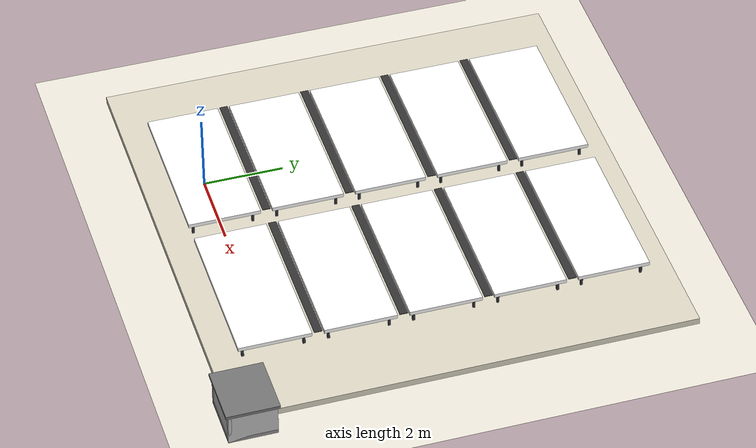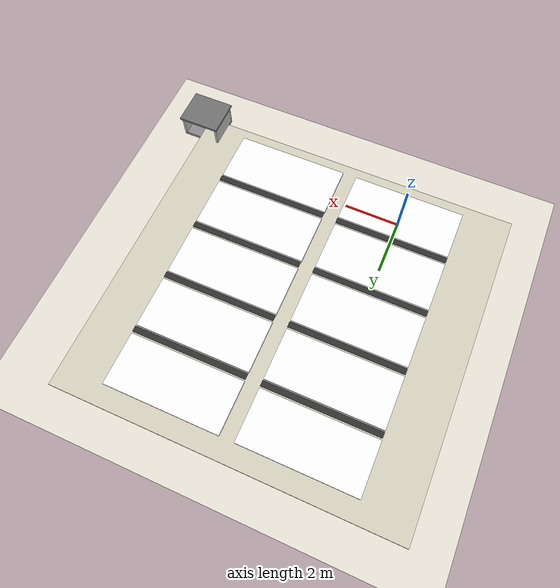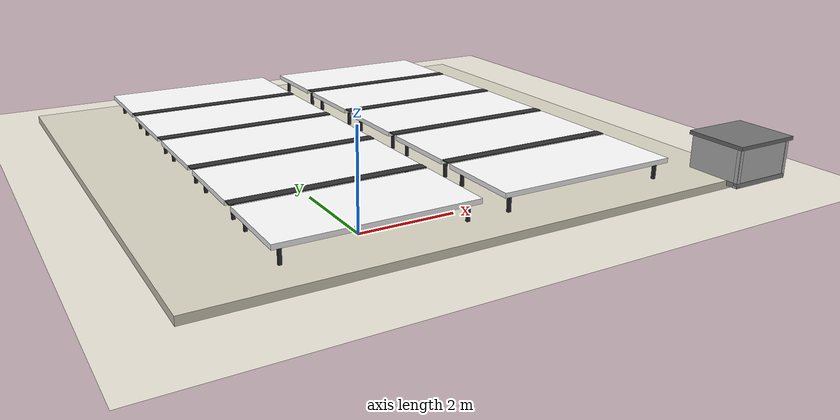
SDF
<?xml version="1.0" ?>
<sdf version="1.9">
  <world name="solar_panel_world">

    <plugin filename="gz-sim-physics-system" name="gz::sim::systems::Physics"/>
    <plugin filename="gz-sim-user-commands-system" name="gz::sim::systems::UserCommands"/>
    <plugin filename="gz-sim-scene-broadcaster-system" name="gz::sim::systems::SceneBroadcaster"/>

    <plugin filename="gz-sim-sensors-system" name="gz::sim::systems::Sensors">
      <render_engine>ogre2</render_engine>
    </plugin>

    <plugin filename="gz-sim-imu-system" name="gz::sim::systems::Imu"/>

    <gravity>0 0 -9.8</gravity>

    <light name="sun" type="directional">
      <cast_shadows>true</cast_shadows>
      <pose>0 0 10 0 0 0</pose>
      <diffuse>0.8 0.8 0.8 1</diffuse>
      <specular>0.2 0.2 0.2 1</specular>
      <direction>-0.5 0.1 -0.9</direction>
    </light>

    <model name="ground_plane">
      <static>true</static>
      <link name="link">
        <collision name="collision">
          <geometry>
            <plane>
              <normal>0 0 1</normal>
              <size>60 60</size>
            </plane>
          </geometry>
        </collision>
        <visual name="visual">
          <geometry>
            <plane>
              <normal>0 0 1</normal>
              <size>60 60</size>
            </plane>
          </geometry>
          <material>
            <ambient>0.92 0.90 0.85 1</ambient>
            <diffuse>0.92 0.90 0.85 1</diffuse>
          </material>
        </visual>
      </link>
    </model>

    <model name="warehouse_roof">
      <static>true</static>
      <pose>2.25 4.2 0.05 0 0 0</pose>
      <link name="link">
        <collision name="collision">
          <geometry>
            <box>
              <size>12.0 11.5 0.20</size>
            </box>
          </geometry>
        </collision>
        <visual name="visual">
          <geometry>
            <box>
              <size>12.0 11.5 0.20</size>
            </box>
          </geometry>
          <material>
            <ambient>0.85 0.83 0.76 1</ambient>
            <diffuse>0.85 0.83 0.76 1</diffuse>
          </material>
        </visual>
      </link>
    </model>

    <!-- FIRST COLUMN: PANELS 1-5 -->

    <model name="panel_1">
      <static>true</static>
      <pose>0 0 0.55 0 0 0</pose>
      <link name="link">
        <visual name="post_fl">
          <pose>-1.8 -0.75 -0.275 0 0 0</pose>
          <geometry><box><size>0.06 0.06 0.55</size></box></geometry>
          <material><ambient>0.20 0.20 0.22 1</ambient><diffuse>0.20 0.20 0.22 1</diffuse></material>
        </visual>
        <visual name="post_fr">
          <pose>1.8 -0.75 -0.275 0 0 0</pose>
          <geometry><box><size>0.06 0.06 0.55</size></box></geometry>
          <material><ambient>0.20 0.20 0.22 1</ambient><diffuse>0.20 0.20 0.22 1</diffuse></material>
        </visual>
        <visual name="post_rl">
          <pose>-1.8 0.75 -0.275 0 0 0</pose>
          <geometry><box><size>0.06 0.06 0.55</size></box></geometry>
          <material><ambient>0.20 0.20 0.22 1</ambient><diffuse>0.20 0.20 0.22 1</diffuse></material>
        </visual>
        <visual name="post_rr">
          <pose>1.8 0.75 -0.275 0 0 0</pose>
          <geometry><box><size>0.06 0.06 0.55</size></box></geometry>
          <material><ambient>0.20 0.20 0.22 1</ambient><diffuse>0.20 0.20 0.22 1</diffuse></material>
        </visual>
        <visual name="rail_left">
          <pose>0 -0.75 -0.02 0 0 0</pose>
          <geometry><box><size>3.8 0.05 0.05</size></box></geometry>
          <material><ambient>0.20 0.20 0.22 1</ambient><diffuse>0.20 0.20 0.22 1</diffuse></material>
        </visual>
        <visual name="rail_right">
          <pose>0 0.75 -0.02 0 0 0</pose>
          <geometry><box><size>3.8 0.05 0.05</size></box></geometry>
          <material><ambient>0.20 0.20 0.22 1</ambient><diffuse>0.20 0.20 0.22 1</diffuse></material>
        </visual>
        <visual name="cross_front">
          <pose>0 -0.35 -0.02 0 0 0</pose>
          <geometry><box><size>3.8 0.04 0.04</size></box></geometry>
          <material><ambient>0.20 0.20 0.22 1</ambient><diffuse>0.20 0.20 0.22 1</diffuse></material>
        </visual>
        <visual name="cross_back">
          <pose>0 0.35 -0.02 0 0 0</pose>
          <geometry><box><size>3.8 0.04 0.04</size></box></geometry>
          <material><ambient>0.20 0.20 0.22 1</ambient><diffuse>0.20 0.20 0.22 1</diffuse></material>
        </visual>
        <visual name="brace_left">
          <pose>-0.9 0 0 0 0 0.55</pose>
          <geometry><box><size>0.04 1.65 0.04</size></box></geometry>
          <material><ambient>0.20 0.20 0.22 1</ambient><diffuse>0.20 0.20 0.22 1</diffuse></material>
        </visual>
        <visual name="brace_right">
          <pose>0.9 0 0 0 0 -0.55</pose>
          <geometry><box><size>0.04 1.65 0.04</size></box></geometry>
          <material><ambient>0.20 0.20 0.22 1</ambient><diffuse>0.20 0.20 0.22 1</diffuse></material>
        </visual>
        <collision name="collision">
          <geometry>
            <box><size>4 1.8 0.1</size></box>
          </geometry>
        </collision>
        <visual name="visual">
          <geometry>
            <box><size>4 1.8 0.1</size></box>
          </geometry>
          <material>
            <ambient>1 1 1 1</ambient>
            <diffuse>1 1 1 1</diffuse>
            <specular>0.15 0.15 0.15 1</specular>
            <pbr>
              <metal>
                <albedo_map>../materials/textures/solar_panel_01_dust.png</albedo_map>
                <roughness>0.4</roughness>
                <metalness>0.1</metalness>
              </metal>
            </pbr>
          </material>
        </visual>
      </link>
    </model>

    <model name="gap_1">
      <static>true</static>
      <pose>0 1.05 0.60 0 0 0</pose>
      <link name="link">
        <collision name="collision">
          <geometry>
            <box><size>4 0.2 0.02</size></box>
          </geometry>
        </collision>
        <visual name="visual">
          <geometry>
            <box><size>4 0.2 0.02</size></box>
          </geometry>
          <material>
            <ambient>0.2 0.2 0.2 1</ambient>
            <diffuse>0.2 0.2 0.2 1</diffuse>
          </material>
        </visual>
      </link>
    </model>

    <model name="panel_2">
      <static>true</static>
      <pose>0 2.1 0.55 0 0 0</pose>
      <link name="link">
        <visual name="post_fl">
          <pose>-1.8 -0.75 -0.275 0 0 0</pose>
          <geometry><box><size>0.06 0.06 0.55</size></box></geometry>
          <material><ambient>0.20 0.20 0.22 1</ambient><diffuse>0.20 0.20 0.22 1</diffuse></material>
        </visual>
        <visual name="post_fr">
          <pose>1.8 -0.75 -0.275 0 0 0</pose>
          <geometry><box><size>0.06 0.06 0.55</size></box></geometry>
          <material><ambient>0.20 0.20 0.22 1</ambient><diffuse>0.20 0.20 0.22 1</diffuse></material>
        </visual>
        <visual name="post_rl">
          <pose>-1.8 0.75 -0.275 0 0 0</pose>
          <geometry><box><size>0.06 0.06 0.55</size></box></geometry>
          <material><ambient>0.20 0.20 0.22 1</ambient><diffuse>0.20 0.20 0.22 1</diffuse></material>
        </visual>
        <visual name="post_rr">
          <pose>1.8 0.75 -0.275 0 0 0</pose>
          <geometry><box><size>0.06 0.06 0.55</size></box></geometry>
          <material><ambient>0.20 0.20 0.22 1</ambient><diffuse>0.20 0.20 0.22 1</diffuse></material>
        </visual>
        <visual name="rail_left">
          <pose>0 -0.75 -0.02 0 0 0</pose>
          <geometry><box><size>3.8 0.05 0.05</size></box></geometry>
          <material><ambient>0.20 0.20 0.22 1</ambient><diffuse>0.20 0.20 0.22 1</diffuse></material>
        </visual>
        <visual name="rail_right">
          <pose>0 0.75 -0.02 0 0 0</pose>
          <geometry><box><size>3.8 0.05 0.05</size></box></geometry>
          <material><ambient>0.20 0.20 0.22 1</ambient><diffuse>0.20 0.20 0.22 1</diffuse></material>
        </visual>
        <visual name="cross_front">
          <pose>0 -0.35 -0.02 0 0 0</pose>
          <geometry><box><size>3.8 0.04 0.04</size></box></geometry>
          <material><ambient>0.20 0.20 0.22 1</ambient><diffuse>0.20 0.20 0.22 1</diffuse></material>
        </visual>
        <visual name="cross_back">
          <pose>0 0.35 -0.02 0 0 0</pose>
          <geometry><box><size>3.8 0.04 0.04</size></box></geometry>
          <material><ambient>0.20 0.20 0.22 1</ambient><diffuse>0.20 0.20 0.22 1</diffuse></material>
        </visual>
        <visual name="brace_left">
          <pose>-0.9 0 0 0 0 0.55</pose>
          <geometry><box><size>0.04 1.65 0.04</size></box></geometry>
          <material><ambient>0.20 0.20 0.22 1</ambient><diffuse>0.20 0.20 0.22 1</diffuse></material>
        </visual>
        <visual name="brace_right">
          <pose>0.9 0 0 0 0 -0.55</pose>
          <geometry><box><size>0.04 1.65 0.04</size></box></geometry>
          <material><ambient>0.20 0.20 0.22 1</ambient><diffuse>0.20 0.20 0.22 1</diffuse></material>
        </visual>
        <collision name="collision">
          <geometry>
            <box><size>4 1.8 0.1</size></box>
          </geometry>
        </collision>
        <visual name="visual">
          <geometry>
            <box><size>4 1.8 0.1</size></box>
          </geometry>
          <material>
            <ambient>1 1 1 1</ambient>
            <diffuse>1 1 1 1</diffuse>
            <specular>0.15 0.15 0.15 1</specular>
            <pbr>
              <metal>
                <albedo_map>../materials/textures/solar_panel_02_dust.png</albedo_map>
                <roughness>0.4</roughness>
                <metalness>0.1</metalness>
              </metal>
            </pbr>
          </material>
        </visual>
      </link>
    </model>

    <model name="gap_2">
      <static>true</static>
      <pose>0 3.15 0.60 0 0 0</pose>
      <link name="link">
        <collision name="collision">
          <geometry>
            <box><size>4 0.2 0.02</size></box>
          </geometry>
        </collision>
        <visual name="visual">
          <geometry>
            <box><size>4 0.2 0.02</size></box>
          </geometry>
          <material>
            <ambient>0.2 0.2 0.2 1</ambient>
            <diffuse>0.2 0.2 0.2 1</diffuse>
          </material>
        </visual>
      </link>
    </model>

    <model name="panel_3">
      <static>true</static>
      <pose>0 4.2 0.55 0 0 0</pose>
      <link name="link">
        <visual name="post_fl">
          <pose>-1.8 -0.75 -0.275 0 0 0</pose>
          <geometry><box><size>0.06 0.06 0.55</size></box></geometry>
          <material><ambient>0.20 0.20 0.22 1</ambient><diffuse>0.20 0.20 0.22 1</diffuse></material>
        </visual>
        <visual name="post_fr">
          <pose>1.8 -0.75 -0.275 0 0 0</pose>
          <geometry><box><size>0.06 0.06 0.55</size></box></geometry>
          <material><ambient>0.20 0.20 0.22 1</ambient><diffuse>0.20 0.20 0.22 1</diffuse></material>
        </visual>
        <visual name="post_rl">
          <pose>-1.8 0.75 -0.275 0 0 0</pose>
          <geometry><box><size>0.06 0.06 0.55</size></box></geometry>
          <material><ambient>0.20 0.20 0.22 1</ambient><diffuse>0.20 0.20 0.22 1</diffuse></material>
        </visual>
        <visual name="post_rr">
          <pose>1.8 0.75 -0.275 0 0 0</pose>
          <geometry><box><size>0.06 0.06 0.55</size></box></geometry>
          <material><ambient>0.20 0.20 0.22 1</ambient><diffuse>0.20 0.20 0.22 1</diffuse></material>
        </visual>
        <visual name="rail_left">
          <pose>0 -0.75 -0.02 0 0 0</pose>
          <geometry><box><size>3.8 0.05 0.05</size></box></geometry>
          <material><ambient>0.20 0.20 0.22 1</ambient><diffuse>0.20 0.20 0.22 1</diffuse></material>
        </visual>
        <visual name="rail_right">
          <pose>0 0.75 -0.02 0 0 0</pose>
          <geometry><box><size>3.8 0.05 0.05</size></box></geometry>
          <material><ambient>0.20 0.20 0.22 1</ambient><diffuse>0.20 0.20 0.22 1</diffuse></material>
        </visual>
        <visual name="cross_front">
          <pose>0 -0.35 -0.02 0 0 0</pose>
          <geometry><box><size>3.8 0.04 0.04</size></box></geometry>
          <material><ambient>0.20 0.20 0.22 1</ambient><diffuse>0.20 0.20 0.22 1</diffuse></material>
        </visual>
        <visual name="cross_back">
          <pose>0 0.35 -0.02 0 0 0</pose>
          <geometry><box><size>3.8 0.04 0.04</size></box></geometry>
          <material><ambient>0.20 0.20 0.22 1</ambient><diffuse>0.20 0.20 0.22 1</diffuse></material>
        </visual>
        <visual name="brace_left">
          <pose>-0.9 0 0 0 0 0.55</pose>
          <geometry><box><size>0.04 1.65 0.04</size></box></geometry>
          <material><ambient>0.20 0.20 0.22 1</ambient><diffuse>0.20 0.20 0.22 1</diffuse></material>
        </visual>
        <visual name="brace_right">
          <pose>0.9 0 0 0 0 -0.55</pose>
          <geometry><box><size>0.04 1.65 0.04</size></box></geometry>
          <material><ambient>0.20 0.20 0.22 1</ambient><diffuse>0.20 0.20 0.22 1</diffuse></material>
        </visual>
        <collision name="collision">
          <geometry>
            <box><size>4 1.8 0.1</size></box>
          </geometry>
        </collision>
        <visual name="visual">
          <geometry>
            <box><size>4 1.8 0.1</size></box>
          </geometry>
          <material>
            <ambient>1 1 1 1</ambient>
            <diffuse>1 1 1 1</diffuse>
            <specular>0.15 0.15 0.15 1</specular>
            <pbr>
              <metal>
                <albedo_map>../materials/textures/solar_panel_03_dust.png</albedo_map>
                <roughness>0.4</roughness>
                <metalness>0.1</metalness>
              </metal>
            </pbr>
          </material>
        </visual>
      </link>
    </model>

    <model name="gap_3">
      <static>true</static>
      <pose>0 5.25 0.60 0 0 0</pose>
      <link name="link">
        <collision name="collision">
          <geometry>
            <box><size>4 0.2 0.02</size></box>
          </geometry>
        </collision>
        <visual name="visual">
          <geometry>
            <box><size>4 0.2 0.02</size></box>
          </geometry>
          <material>
            <ambient>0.2 0.2 0.2 1</ambient>
            <diffuse>0.2 0.2 0.2 1</diffuse>
          </material>
        </visual>
      </link>
    </model>

    <model name="panel_4">
      <static>true</static>
      <pose>0 6.3 0.55 0 0 0</pose>
      <link name="link">
        <visual name="post_fl">
          <pose>-1.8 -0.75 -0.275 0 0 0</pose>
          <geometry><box><size>0.06 0.06 0.55</size></box></geometry>
          <material><ambient>0.20 0.20 0.22 1</ambient><diffuse>0.20 0.20 0.22 1</diffuse></material>
        </visual>
        <visual name="post_fr">
          <pose>1.8 -0.75 -0.275 0 0 0</pose>
          <geometry><box><size>0.06 0.06 0.55</size></box></geometry>
          <material><ambient>0.20 0.20 0.22 1</ambient><diffuse>0.20 0.20 0.22 1</diffuse></material>
        </visual>
        <visual name="post_rl">
          <pose>-1.8 0.75 -0.275 0 0 0</pose>
          <geometry><box><size>0.06 0.06 0.55</size></box></geometry>
          <material><ambient>0.20 0.20 0.22 1</ambient><diffuse>0.20 0.20 0.22 1</diffuse></material>
        </visual>
        <visual name="post_rr">
          <pose>1.8 0.75 -0.275 0 0 0</pose>
          <geometry><box><size>0.06 0.06 0.55</size></box></geometry>
          <material><ambient>0.20 0.20 0.22 1</ambient><diffuse>0.20 0.20 0.22 1</diffuse></material>
        </visual>
        <visual name="rail_left">
          <pose>0 -0.75 -0.02 0 0 0</pose>
          <geometry><box><size>3.8 0.05 0.05</size></box></geometry>
          <material><ambient>0.20 0.20 0.22 1</ambient><diffuse>0.20 0.20 0.22 1</diffuse></material>
        </visual>
        <visual name="rail_right">
          <pose>0 0.75 -0.02 0 0 0</pose>
          <geometry><box><size>3.8 0.05 0.05</size></box></geometry>
          <material><ambient>0.20 0.20 0.22 1</ambient><diffuse>0.20 0.20 0.22 1</diffuse></material>
        </visual>
        <visual name="cross_front">
          <pose>0 -0.35 -0.02 0 0 0</pose>
          <geometry><box><size>3.8 0.04 0.04</size></box></geometry>
          <material><ambient>0.20 0.20 0.22 1</ambient><diffuse>0.20 0.20 0.22 1</diffuse></material>
        </visual>
        <visual name="cross_back">
          <pose>0 0.35 -0.02 0 0 0</pose>
          <geometry><box><size>3.8 0.04 0.04</size></box></geometry>
          <material><ambient>0.20 0.20 0.22 1</ambient><diffuse>0.20 0.20 0.22 1</diffuse></material>
        </visual>
        <visual name="brace_left">
          <pose>-0.9 0 0 0 0 0.55</pose>
          <geometry><box><size>0.04 1.65 0.04</size></box></geometry>
          <material><ambient>0.20 0.20 0.22 1</ambient><diffuse>0.20 0.20 0.22 1</diffuse></material>
        </visual>
        <visual name="brace_right">
          <pose>0.9 0 0 0 0 -0.55</pose>
          <geometry><box><size>0.04 1.65 0.04</size></box></geometry>
          <material><ambient>0.20 0.20 0.22 1</ambient><diffuse>0.20 0.20 0.22 1</diffuse></material>
        </visual>
        <collision name="collision">
          <geometry>
            <box><size>4 1.8 0.1</size></box>
          </geometry>
        </collision>
        <visual name="visual">
          <geometry>
            <box><size>4 1.8 0.1</size></box>
          </geometry>
          <material>
            <ambient>1 1 1 1</ambient>
            <diffuse>1 1 1 1</diffuse>
            <specular>0.15 0.15 0.15 1</specular>
            <pbr>
              <metal>
                <albedo_map>../materials/textures/solar_panel_04_dust.png</albedo_map>
                <roughness>0.4</roughness>
                <metalness>0.1</metalness>
              </metal>
            </pbr>
          </material>
        </visual>
      </link>
    </model>

    <model name="gap_4">
      <static>true</static>
      <pose>0 7.35 0.60 0 0 0</pose>
      <link name="link">
        <collision name="collision">
          <geometry>
            <box><size>4 0.2 0.02</size></box>
          </geometry>
        </collision>
        <visual name="visual">
          <geometry>
            <box><size>4 0.2 0.02</size></box>
          </geometry>
          <material>
            <ambient>0.2 0.2 0.2 1</ambient>
            <diffuse>0.2 0.2 0.2 1</diffuse>
          </material>
        </visual>
      </link>
    </model>

    <model name="panel_5">
      <static>true</static>
      <pose>0 8.4 0.55 0 0 0</pose>
      <link name="link">
        <visual name="post_fl">
          <pose>-1.8 -0.75 -0.275 0 0 0</pose>
          <geometry><box><size>0.06 0.06 0.55</size></box></geometry>
          <material><ambient>0.20 0.20 0.22 1</ambient><diffuse>0.20 0.20 0.22 1</diffuse></material>
        </visual>
        <visual name="post_fr">
          <pose>1.8 -0.75 -0.275 0 0 0</pose>
          <geometry><box><size>0.06 0.06 0.55</size></box></geometry>
          <material><ambient>0.20 0.20 0.22 1</ambient><diffuse>0.20 0.20 0.22 1</diffuse></material>
        </visual>
        <visual name="post_rl">
          <pose>-1.8 0.75 -0.275 0 0 0</pose>
          <geometry><box><size>0.06 0.06 0.55</size></box></geometry>
          <material><ambient>0.20 0.20 0.22 1</ambient><diffuse>0.20 0.20 0.22 1</diffuse></material>
        </visual>
        <visual name="post_rr">
          <pose>1.8 0.75 -0.275 0 0 0</pose>
          <geometry><box><size>0.06 0.06 0.55</size></box></geometry>
          <material><ambient>0.20 0.20 0.22 1</ambient><diffuse>0.20 0.20 0.22 1</diffuse></material>
        </visual>
        <visual name="rail_left">
          <pose>0 -0.75 -0.02 0 0 0</pose>
          <geometry><box><size>3.8 0.05 0.05</size></box></geometry>
          <material><ambient>0.20 0.20 0.22 1</ambient><diffuse>0.20 0.20 0.22 1</diffuse></material>
        </visual>
        <visual name="rail_right">
          <pose>0 0.75 -0.02 0 0 0</pose>
          <geometry><box><size>3.8 0.05 0.05</size></box></geometry>
          <material><ambient>0.20 0.20 0.22 1</ambient><diffuse>0.20 0.20 0.22 1</diffuse></material>
        </visual>
        <visual name="cross_front">
          <pose>0 -0.35 -0.02 0 0 0</pose>
          <geometry><box><size>3.8 0.04 0.04</size></box></geometry>
          <material><ambient>0.20 0.20 0.22 1</ambient><diffuse>0.20 0.20 0.22 1</diffuse></material>
        </visual>
        <visual name="cross_back">
          <pose>0 0.35 -0.02 0 0 0</pose>
          <geometry><box><size>3.8 0.04 0.04</size></box></geometry>
          <material><ambient>0.20 0.20 0.22 1</ambient><diffuse>0.20 0.20 0.22 1</diffuse></material>
        </visual>
        <visual name="brace_left">
          <pose>-0.9 0 0 0 0 0.55</pose>
          <geometry><box><size>0.04 1.65 0.04</size></box></geometry>
          <material><ambient>0.20 0.20 0.22 1</ambient><diffuse>0.20 0.20 0.22 1</diffuse></material>
        </visual>
        <visual name="brace_right">
          <pose>0.9 0 0 0 0 -0.55</pose>
          <geometry><box><size>0.04 1.65 0.04</size></box></geometry>
          <material><ambient>0.20 0.20 0.22 1</ambient><diffuse>0.20 0.20 0.22 1</diffuse></material>
        </visual>
        <collision name="collision">
          <geometry>
            <box><size>4 1.8 0.1</size></box>
          </geometry>
        </collision>
        <visual name="visual">
          <geometry>
            <box><size>4 1.8 0.1</size></box>
          </geometry>
          <material>
            <ambient>1 1 1 1</ambient>
            <diffuse>1 1 1 1</diffuse>
            <specular>0.15 0.15 0.15 1</specular>
            <pbr>
              <metal>
                <albedo_map>../materials/textures/solar_panel_05_dust.png</albedo_map>
                <roughness>0.4</roughness>
                <metalness>0.1</metalness>
              </metal>
            </pbr>
          </material>
        </visual>
      </link>
    </model>

    <!-- SECOND COLUMN: PANELS 6-10 -->

    <model name="panel_6">
      <static>true</static>
      <pose>4.5 0 0.55 0 0 0</pose>
      <link name="link">
        <visual name="post_fl">
          <pose>-1.8 -0.75 -0.275 0 0 0</pose>
          <geometry><box><size>0.06 0.06 0.55</size></box></geometry>
          <material><ambient>0.20 0.20 0.22 1</ambient><diffuse>0.20 0.20 0.22 1</diffuse></material>
        </visual>
        <visual name="post_fr">
          <pose>1.8 -0.75 -0.275 0 0 0</pose>
          <geometry><box><size>0.06 0.06 0.55</size></box></geometry>
          <material><ambient>0.20 0.20 0.22 1</ambient><diffuse>0.20 0.20 0.22 1</diffuse></material>
        </visual>
        <visual name="post_rl">
          <pose>-1.8 0.75 -0.275 0 0 0</pose>
          <geometry><box><size>0.06 0.06 0.55</size></box></geometry>
          <material><ambient>0.20 0.20 0.22 1</ambient><diffuse>0.20 0.20 0.22 1</diffuse></material>
        </visual>
        <visual name="post_rr">
          <pose>1.8 0.75 -0.275 0 0 0</pose>
          <geometry><box><size>0.06 0.06 0.55</size></box></geometry>
          <material><ambient>0.20 0.20 0.22 1</ambient><diffuse>0.20 0.20 0.22 1</diffuse></material>
        </visual>
        <visual name="rail_left">
          <pose>0 -0.75 -0.02 0 0 0</pose>
          <geometry><box><size>3.8 0.05 0.05</size></box></geometry>
          <material><ambient>0.20 0.20 0.22 1</ambient><diffuse>0.20 0.20 0.22 1</diffuse></material>
        </visual>
        <visual name="rail_right">
          <pose>0 0.75 -0.02 0 0 0</pose>
          <geometry><box><size>3.8 0.05 0.05</size></box></geometry>
          <material><ambient>0.20 0.20 0.22 1</ambient><diffuse>0.20 0.20 0.22 1</diffuse></material>
        </visual>
        <visual name="cross_front">
          <pose>0 -0.35 -0.02 0 0 0</pose>
          <geometry><box><size>3.8 0.04 0.04</size></box></geometry>
          <material><ambient>0.20 0.20 0.22 1</ambient><diffuse>0.20 0.20 0.22 1</diffuse></material>
        </visual>
        <visual name="cross_back">
          <pose>0 0.35 -0.02 0 0 0</pose>
          <geometry><box><size>3.8 0.04 0.04</size></box></geometry>
          <material><ambient>0.20 0.20 0.22 1</ambient><diffuse>0.20 0.20 0.22 1</diffuse></material>
        </visual>
        <visual name="brace_left">
          <pose>-0.9 0 0 0 0 0.55</pose>
          <geometry><box><size>0.04 1.65 0.04</size></box></geometry>
          <material><ambient>0.20 0.20 0.22 1</ambient><diffuse>0.20 0.20 0.22 1</diffuse></material>
        </visual>
        <visual name="brace_right">
          <pose>0.9 0 0 0 0 -0.55</pose>
          <geometry><box><size>0.04 1.65 0.04</size></box></geometry>
          <material><ambient>0.20 0.20 0.22 1</ambient><diffuse>0.20 0.20 0.22 1</diffuse></material>
        </visual>
        <collision name="collision">
          <geometry>
            <box><size>4 1.8 0.1</size></box>
          </geometry>
        </collision>
        <visual name="visual">
          <geometry>
            <box><size>4 1.8 0.1</size></box>
          </geometry>
          <material>
            <ambient>1 1 1 1</ambient>
            <diffuse>1 1 1 1</diffuse>
            <specular>0.15 0.15 0.15 1</specular>
            <pbr>
              <metal>
                <albedo_map>../materials/textures/solar_panel_06_dust.png</albedo_map>
                <roughness>0.4</roughness>
                <metalness>0.1</metalness>
              </metal>
            </pbr>
          </material>
        </visual>
      </link>
    </model>

    <model name="gap_5">
      <static>true</static>
      <pose>4.5 1.05 0.60 0 0 0</pose>
      <link name="link">
        <collision name="collision">
          <geometry>
            <box><size>4 0.2 0.02</size></box>
          </geometry>
        </collision>
        <visual name="visual">
          <geometry>
            <box><size>4 0.2 0.02</size></box>
          </geometry>
          <material>
            <ambient>0.2 0.2 0.2 1</ambient>
            <diffuse>0.2 0.2 0.2 1</diffuse>
          </material>
        </visual>
      </link>
    </model>

    <model name="panel_7">
      <static>true</static>
      <pose>4.5 2.1 0.55 0 0 0</pose>
      <link name="link">
        <visual name="post_fl">
          <pose>-1.8 -0.75 -0.275 0 0 0</pose>
          <geometry><box><size>0.06 0.06 0.55</size></box></geometry>
          <material><ambient>0.20 0.20 0.22 1</ambient><diffuse>0.20 0.20 0.22 1</diffuse></material>
        </visual>
        <visual name="post_fr">
          <pose>1.8 -0.75 -0.275 0 0 0</pose>
          <geometry><box><size>0.06 0.06 0.55</size></box></geometry>
          <material><ambient>0.20 0.20 0.22 1</ambient><diffuse>0.20 0.20 0.22 1</diffuse></material>
        </visual>
        <visual name="post_rl">
          <pose>-1.8 0.75 -0.275 0 0 0</pose>
          <geometry><box><size>0.06 0.06 0.55</size></box></geometry>
          <material><ambient>0.20 0.20 0.22 1</ambient><diffuse>0.20 0.20 0.22 1</diffuse></material>
        </visual>
        <visual name="post_rr">
          <pose>1.8 0.75 -0.275 0 0 0</pose>
          <geometry><box><size>0.06 0.06 0.55</size></box></geometry>
          <material><ambient>0.20 0.20 0.22 1</ambient><diffuse>0.20 0.20 0.22 1</diffuse></material>
        </visual>
        <visual name="rail_left">
          <pose>0 -0.75 -0.02 0 0 0</pose>
          <geometry><box><size>3.8 0.05 0.05</size></box></geometry>
          <material><ambient>0.20 0.20 0.22 1</ambient><diffuse>0.20 0.20 0.22 1</diffuse></material>
        </visual>
        <visual name="rail_right">
          <pose>0 0.75 -0.02 0 0 0</pose>
          <geometry><box><size>3.8 0.05 0.05</size></box></geometry>
          <material><ambient>0.20 0.20 0.22 1</ambient><diffuse>0.20 0.20 0.22 1</diffuse></material>
        </visual>
        <visual name="cross_front">
          <pose>0 -0.35 -0.02 0 0 0</pose>
          <geometry><box><size>3.8 0.04 0.04</size></box></geometry>
          <material><ambient>0.20 0.20 0.22 1</ambient><diffuse>0.20 0.20 0.22 1</diffuse></material>
        </visual>
        <visual name="cross_back">
          <pose>0 0.35 -0.02 0 0 0</pose>
          <geometry><box><size>3.8 0.04 0.04</size></box></geometry>
          <material><ambient>0.20 0.20 0.22 1</ambient><diffuse>0.20 0.20 0.22 1</diffuse></material>
        </visual>
        <visual name="brace_left">
          <pose>-0.9 0 0 0 0 0.55</pose>
          <geometry><box><size>0.04 1.65 0.04</size></box></geometry>
          <material><ambient>0.20 0.20 0.22 1</ambient><diffuse>0.20 0.20 0.22 1</diffuse></material>
        </visual>
        <visual name="brace_right">
          <pose>0.9 0 0 0 0 -0.55</pose>
          <geometry><box><size>0.04 1.65 0.04</size></box></geometry>
          <material><ambient>0.20 0.20 0.22 1</ambient><diffuse>0.20 0.20 0.22 1</diffuse></material>
        </visual>
        <collision name="collision">
          <geometry>
            <box><size>4 1.8 0.1</size></box>
          </geometry>
        </collision>
        <visual name="visual">
          <geometry>
            <box><size>4 1.8 0.1</size></box>
          </geometry>
          <material>
            <ambient>1 1 1 1</ambient>
            <diffuse>1 1 1 1</diffuse>
            <specular>0.15 0.15 0.15 1</specular>
            <pbr>
              <metal>
                <albedo_map>../materials/textures/solar_panel_07_dust.png</albedo_map>
                <roughness>0.4</roughness>
                <metalness>0.1</metalness>
              </metal>
            </pbr>
          </material>
        </visual>
      </link>
    </model>

    <model name="gap_6">
      <static>true</static>
      <pose>4.5 3.15 0.60 0 0 0</pose>
      <link name="link">
        <collision name="collision">
          <geometry>
            <box><size>4 0.2 0.02</size></box>
          </geometry>
        </collision>
        <visual name="visual">
          <geometry>
            <box><size>4 0.2 0.02</size></box>
          </geometry>
          <material>
            <ambient>0.2 0.2 0.2 1</ambient>
            <diffuse>0.2 0.2 0.2 1</diffuse>
          </material>
        </visual>
      </link>
    </model>

    <model name="panel_8">
      <static>true</static>
      <pose>4.5 4.2 0.55 0 0 0</pose>
      <link name="link">
        <visual name="post_fl">
          <pose>-1.8 -0.75 -0.275 0 0 0</pose>
          <geometry><box><size>0.06 0.06 0.55</size></box></geometry>
          <material><ambient>0.20 0.20 0.22 1</ambient><diffuse>0.20 0.20 0.22 1</diffuse></material>
        </visual>
        <visual name="post_fr">
          <pose>1.8 -0.75 -0.275 0 0 0</pose>
          <geometry><box><size>0.06 0.06 0.55</size></box></geometry>
          <material><ambient>0.20 0.20 0.22 1</ambient><diffuse>0.20 0.20 0.22 1</diffuse></material>
        </visual>
        <visual name="post_rl">
          <pose>-1.8 0.75 -0.275 0 0 0</pose>
          <geometry><box><size>0.06 0.06 0.55</size></box></geometry>
          <material><ambient>0.20 0.20 0.22 1</ambient><diffuse>0.20 0.20 0.22 1</diffuse></material>
        </visual>
        <visual name="post_rr">
          <pose>1.8 0.75 -0.275 0 0 0</pose>
          <geometry><box><size>0.06 0.06 0.55</size></box></geometry>
          <material><ambient>0.20 0.20 0.22 1</ambient><diffuse>0.20 0.20 0.22 1</diffuse></material>
        </visual>
        <visual name="rail_left">
          <pose>0 -0.75 -0.02 0 0 0</pose>
          <geometry><box><size>3.8 0.05 0.05</size></box></geometry>
          <material><ambient>0.20 0.20 0.22 1</ambient><diffuse>0.20 0.20 0.22 1</diffuse></material>
        </visual>
        <visual name="rail_right">
          <pose>0 0.75 -0.02 0 0 0</pose>
          <geometry><box><size>3.8 0.05 0.05</size></box></geometry>
          <material><ambient>0.20 0.20 0.22 1</ambient><diffuse>0.20 0.20 0.22 1</diffuse></material>
        </visual>
        <visual name="cross_front">
          <pose>0 -0.35 -0.02 0 0 0</pose>
          <geometry><box><size>3.8 0.04 0.04</size></box></geometry>
          <material><ambient>0.20 0.20 0.22 1</ambient><diffuse>0.20 0.20 0.22 1</diffuse></material>
        </visual>
        <visual name="cross_back">
          <pose>0 0.35 -0.02 0 0 0</pose>
          <geometry><box><size>3.8 0.04 0.04</size></box></geometry>
          <material><ambient>0.20 0.20 0.22 1</ambient><diffuse>0.20 0.20 0.22 1</diffuse></material>
        </visual>
        <visual name="brace_left">
          <pose>-0.9 0 0 0 0 0.55</pose>
          <geometry><box><size>0.04 1.65 0.04</size></box></geometry>
          <material><ambient>0.20 0.20 0.22 1</ambient><diffuse>0.20 0.20 0.22 1</diffuse></material>
        </visual>
        <visual name="brace_right">
          <pose>0.9 0 0 0 0 -0.55</pose>
          <geometry><box><size>0.04 1.65 0.04</size></box></geometry>
          <material><ambient>0.20 0.20 0.22 1</ambient><diffuse>0.20 0.20 0.22 1</diffuse></material>
        </visual>
        <collision name="collision">
          <geometry>
            <box><size>4 1.8 0.1</size></box>
          </geometry>
        </collision>
        <visual name="visual">
          <geometry>
            <box><size>4 1.8 0.1</size></box>
          </geometry>
          <material>
            <ambient>1 1 1 1</ambient>
            <diffuse>1 1 1 1</diffuse>
            <specular>0.15 0.15 0.15 1</specular>
            <pbr>
              <metal>
                <albedo_map>../materials/textures/solar_panel_08_dust.png</albedo_map>
                <roughness>0.4</roughness>
                <metalness>0.1</metalness>
              </metal>
            </pbr>
          </material>
        </visual>
      </link>
    </model>

    <model name="gap_7">
      <static>true</static>
      <pose>4.5 5.25 0.60 0 0 0</pose>
      <link name="link">
        <collision name="collision">
          <geometry>
            <box><size>4 0.2 0.02</size></box>
          </geometry>
        </collision>
        <visual name="visual">
          <geometry>
            <box><size>4 0.2 0.02</size></box>
          </geometry>
          <material>
            <ambient>0.2 0.2 0.2 1</ambient>
            <diffuse>0.2 0.2 0.2 1</diffuse>
          </material>
        </visual>
      </link>
    </model>

    <model name="panel_9">
      <static>true</static>
      <pose>4.5 6.3 0.55 0 0 0</pose>
      <link name="link">
        <visual name="post_fl">
          <pose>-1.8 -0.75 -0.275 0 0 0</pose>
          <geometry><box><size>0.06 0.06 0.55</size></box></geometry>
          <material><ambient>0.20 0.20 0.22 1</ambient><diffuse>0.20 0.20 0.22 1</diffuse></material>
        </visual>
        <visual name="post_fr">
          <pose>1.8 -0.75 -0.275 0 0 0</pose>
          <geometry><box><size>0.06 0.06 0.55</size></box></geometry>
          <material><ambient>0.20 0.20 0.22 1</ambient><diffuse>0.20 0.20 0.22 1</diffuse></material>
        </visual>
        <visual name="post_rl">
          <pose>-1.8 0.75 -0.275 0 0 0</pose>
          <geometry><box><size>0.06 0.06 0.55</size></box></geometry>
          <material><ambient>0.20 0.20 0.22 1</ambient><diffuse>0.20 0.20 0.22 1</diffuse></material>
        </visual>
        <visual name="post_rr">
          <pose>1.8 0.75 -0.275 0 0 0</pose>
          <geometry><box><size>0.06 0.06 0.55</size></box></geometry>
          <material><ambient>0.20 0.20 0.22 1</ambient><diffuse>0.20 0.20 0.22 1</diffuse></material>
        </visual>
        <visual name="rail_left">
          <pose>0 -0.75 -0.02 0 0 0</pose>
          <geometry><box><size>3.8 0.05 0.05</size></box></geometry>
          <material><ambient>0.20 0.20 0.22 1</ambient><diffuse>0.20 0.20 0.22 1</diffuse></material>
        </visual>
        <visual name="rail_right">
          <pose>0 0.75 -0.02 0 0 0</pose>
          <geometry><box><size>3.8 0.05 0.05</size></box></geometry>
          <material><ambient>0.20 0.20 0.22 1</ambient><diffuse>0.20 0.20 0.22 1</diffuse></material>
        </visual>
        <visual name="cross_front">
          <pose>0 -0.35 -0.02 0 0 0</pose>
          <geometry><box><size>3.8 0.04 0.04</size></box></geometry>
          <material><ambient>0.20 0.20 0.22 1</ambient><diffuse>0.20 0.20 0.22 1</diffuse></material>
        </visual>
        <visual name="cross_back">
          <pose>0 0.35 -0.02 0 0 0</pose>
          <geometry><box><size>3.8 0.04 0.04</size></box></geometry>
          <material><ambient>0.20 0.20 0.22 1</ambient><diffuse>0.20 0.20 0.22 1</diffuse></material>
        </visual>
        <visual name="brace_left">
          <pose>-0.9 0 0 0 0 0.55</pose>
          <geometry><box><size>0.04 1.65 0.04</size></box></geometry>
          <material><ambient>0.20 0.20 0.22 1</ambient><diffuse>0.20 0.20 0.22 1</diffuse></material>
        </visual>
        <visual name="brace_right">
          <pose>0.9 0 0 0 0 -0.55</pose>
          <geometry><box><size>0.04 1.65 0.04</size></box></geometry>
          <material><ambient>0.20 0.20 0.22 1</ambient><diffuse>0.20 0.20 0.22 1</diffuse></material>
        </visual>
        <collision name="collision">
          <geometry>
            <box><size>4 1.8 0.1</size></box>
          </geometry>
        </collision>
        <visual name="visual">
          <geometry>
            <box><size>4 1.8 0.1</size></box>
          </geometry>
          <material>
            <ambient>1 1 1 1</ambient>
            <diffuse>1 1 1 1</diffuse>
            <specular>0.15 0.15 0.15 1</specular>
            <pbr>
              <metal>
                <albedo_map>../materials/textures/solar_panel_09_dust.png</albedo_map>
                <roughness>0.4</roughness>
                <metalness>0.1</metalness>
              </metal>
            </pbr>
          </material>
        </visual>
      </link>
    </model>

    <model name="gap_8">
      <static>true</static>
      <pose>4.5 7.35 0.60 0 0 0</pose>
      <link name="link">
        <collision name="collision">
          <geometry>
            <box><size>4 0.2 0.02</size></box>
          </geometry>
        </collision>
        <visual name="visual">
          <geometry>
            <box><size>4 0.2 0.02</size></box>
          </geometry>
          <material>
            <ambient>0.2 0.2 0.2 1</ambient>
            <diffuse>0.2 0.2 0.2 1</diffuse>
          </material>
        </visual>
      </link>
    </model>

    <model name="panel_10">
      <static>true</static>
      <pose>4.5 8.4 0.55 0 0 0</pose>
      <link name="link">
        <visual name="post_fl">
          <pose>-1.8 -0.75 -0.275 0 0 0</pose>
          <geometry><box><size>0.06 0.06 0.55</size></box></geometry>
          <material><ambient>0.20 0.20 0.22 1</ambient><diffuse>0.20 0.20 0.22 1</diffuse></material>
        </visual>
        <visual name="post_fr">
          <pose>1.8 -0.75 -0.275 0 0 0</pose>
          <geometry><box><size>0.06 0.06 0.55</size></box></geometry>
          <material><ambient>0.20 0.20 0.22 1</ambient><diffuse>0.20 0.20 0.22 1</diffuse></material>
        </visual>
        <visual name="post_rl">
          <pose>-1.8 0.75 -0.275 0 0 0</pose>
          <geometry><box><size>0.06 0.06 0.55</size></box></geometry>
          <material><ambient>0.20 0.20 0.22 1</ambient><diffuse>0.20 0.20 0.22 1</diffuse></material>
        </visual>
        <visual name="post_rr">
          <pose>1.8 0.75 -0.275 0 0 0</pose>
          <geometry><box><size>0.06 0.06 0.55</size></box></geometry>
          <material><ambient>0.20 0.20 0.22 1</ambient><diffuse>0.20 0.20 0.22 1</diffuse></material>
        </visual>
        <visual name="rail_left">
          <pose>0 -0.75 -0.02 0 0 0</pose>
          <geometry><box><size>3.8 0.05 0.05</size></box></geometry>
          <material><ambient>0.20 0.20 0.22 1</ambient><diffuse>0.20 0.20 0.22 1</diffuse></material>
        </visual>
        <visual name="rail_right">
          <pose>0 0.75 -0.02 0 0 0</pose>
          <geometry><box><size>3.8 0.05 0.05</size></box></geometry>
          <material><ambient>0.20 0.20 0.22 1</ambient><diffuse>0.20 0.20 0.22 1</diffuse></material>
        </visual>
        <visual name="cross_front">
          <pose>0 -0.35 -0.02 0 0 0</pose>
          <geometry><box><size>3.8 0.04 0.04</size></box></geometry>
          <material><ambient>0.20 0.20 0.22 1</ambient><diffuse>0.20 0.20 0.22 1</diffuse></material>
        </visual>
        <visual name="cross_back">
          <pose>0 0.35 -0.02 0 0 0</pose>
          <geometry><box><size>3.8 0.04 0.04</size></box></geometry>
          <material><ambient>0.20 0.20 0.22 1</ambient><diffuse>0.20 0.20 0.22 1</diffuse></material>
        </visual>
        <visual name="brace_left">
          <pose>-0.9 0 0 0 0 0.55</pose>
          <geometry><box><size>0.04 1.65 0.04</size></box></geometry>
          <material><ambient>0.20 0.20 0.22 1</ambient><diffuse>0.20 0.20 0.22 1</diffuse></material>
        </visual>
        <visual name="brace_right">
          <pose>0.9 0 0 0 0 -0.55</pose>
          <geometry><box><size>0.04 1.65 0.04</size></box></geometry>
          <material><ambient>0.20 0.20 0.22 1</ambient><diffuse>0.20 0.20 0.22 1</diffuse></material>
        </visual>
        <collision name="collision">
          <geometry>
            <box><size>4 1.8 0.1</size></box>
          </geometry>
        </collision>
        <visual name="visual">
          <geometry>
            <box><size>4 1.8 0.1</size></box>
          </geometry>
          <material>
            <ambient>1 1 1 1</ambient>
            <diffuse>1 1 1 1</diffuse>
            <specular>0.15 0.15 0.15 1</specular>
            <pbr>
              <metal>
                <albedo_map>../materials/textures/solar_panel_10_dust.png</albedo_map>
                <roughness>0.4</roughness>
                <metalness>0.1</metalness>
              </metal>
            </pbr>
          </material>
        </visual>
      </link>
    </model>

    <model name="dock_shed">
      <static>true</static>
      <pose>8.2 -1.2 0.45 0 0 0</pose>
      <link name="link">

        <collision name="floor_collision">
          <pose>0 0 -0.35 0 0 0</pose>
          <geometry>
            <box><size>1.4 1.2 0.1</size></box>
          </geometry>
        </collision>
        <visual name="floor_visual">
          <pose>0 0 -0.35 0 0 0</pose>
          <geometry>
            <box><size>1.4 1.2 0.1</size></box>
          </geometry>
          <material>
            <ambient>0.55 0.55 0.55 1</ambient>
            <diffuse>0.55 0.55 0.55 1</diffuse>
          </material>
        </visual>

        <collision name="back_wall_collision">
          <pose>0 -0.55 0 0 0 0</pose>
          <geometry>
            <box><size>1.4 0.08 0.8</size></box>
          </geometry>
        </collision>
        <visual name="back_wall_visual">
          <pose>0 -0.55 0 0 0 0</pose>
          <geometry>
            <box><size>1.4 0.08 0.8</size></box>
          </geometry>
          <material>
            <ambient>0.75 0.75 0.75 1</ambient>
            <diffuse>0.75 0.75 0.75 1</diffuse>
          </material>
        </visual>

        <collision name="left_wall_collision">
          <pose>-0.66 0 0 0 0 0</pose>
          <geometry>
            <box><size>0.08 1.2 0.8</size></box>
          </geometry>
        </collision>
        <visual name="left_wall_visual">
          <pose>-0.66 0 0 0 0 0</pose>
          <geometry>
            <box><size>0.08 1.2 0.8</size></box>
          </geometry>
          <material>
            <ambient>0.75 0.75 0.75 1</ambient>
            <diffuse>0.75 0.75 0.75 1</diffuse>
          </material>
        </visual>

        <collision name="right_wall_collision">
          <pose>0.66 0 0 0 0 0</pose>
          <geometry>
            <box><size>0.08 1.2 0.8</size></box>
          </geometry>
        </collision>
        <visual name="right_wall_visual">
          <pose>0.66 0 0 0 0 0</pose>
          <geometry>
            <box><size>0.08 1.2 0.8</size></box>
          </geometry>
          <material>
            <ambient>0.75 0.75 0.75 1</ambient>
            <diffuse>0.75 0.75 0.75 1</diffuse>
          </material>
        </visual>

        <collision name="roof_collision">
          <pose>0 0 0.45 0 0 0</pose>
          <geometry>
            <box><size>1.5 1.3 0.08</size></box>
          </geometry>
        </collision>
        <visual name="roof_visual">
          <pose>0 0 0.45 0 0 0</pose>
          <geometry>
            <box><size>1.5 1.3 0.08</size></box>
          </geometry>
          <material>
            <ambient>0.45 0.45 0.45 1</ambient>
            <diffuse>0.45 0.45 0.45 1</diffuse>
          </material>
        </visual>

      </link>
    </model>

  </world>
</sdf>
